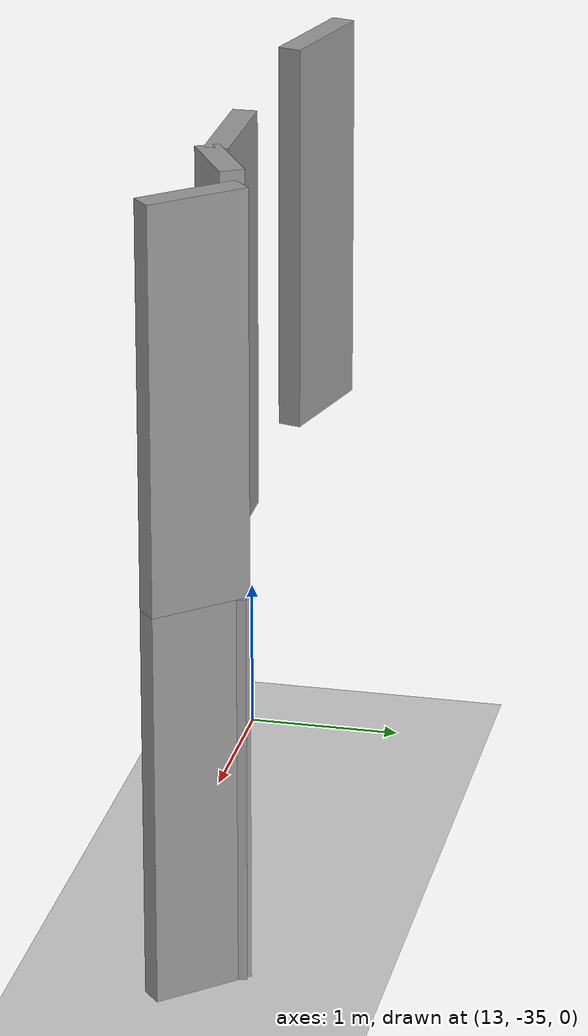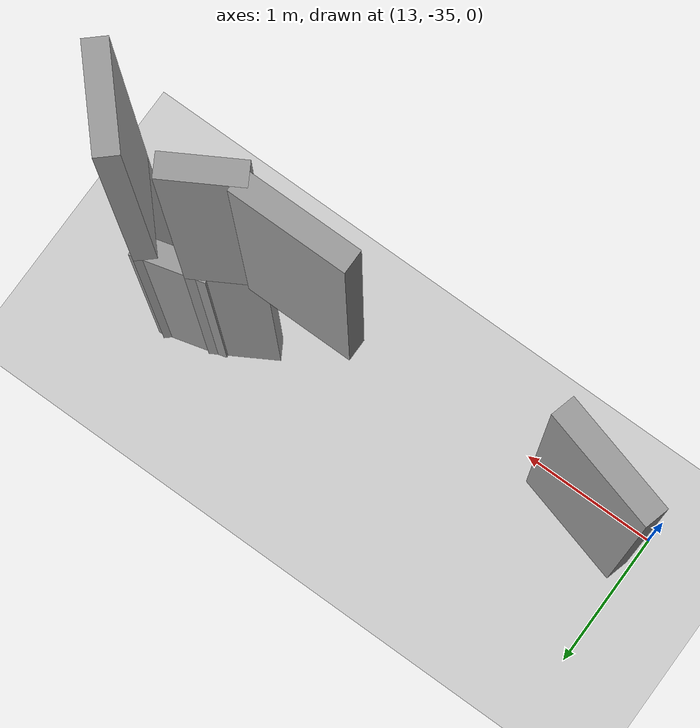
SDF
<sdf version="1.7">
 <world name="default">
  <model name="ground_plane">
   <static>1</static>
   <link name="link">
    <collision name="collision">
     <geometry><plane><normal>0 0 1</normal><size>100 100</size></plane></geometry>
     <surface>
      <contact><collide_bitmask>65535</collide_bitmask></contact>
      <friction><ode><mu>100</mu><mu2>50</mu2></ode></friction>
     </surface>
    </collision>
    <visual name="visual">
     <cast_shadows>0</cast_shadows>
     <geometry><plane><normal>0 0 1</normal><size>100 100</size></plane></geometry>
     <material>
      <script><uri>file://media/materials/scripts/gazebo.material</uri><name>Gazebo/Grey</name></script>
     </material>
    </visual>
   </link>
  </model>
  <model name="EnvDC01">
   <link name="Wall_203">
    <pose>9.47049 -28.24 0 0 -0 0.523599</pose>
    <visual name="Wall_203_Visual">
     <pose>0 0 1.25 0 -0 0</pose>
     <geometry><box><size>0.5 0.15 2.5</size></box></geometry>
     <material>
      <script><uri>file://media/materials/scripts/gazebo.material</uri><name>Gazebo/Grey</name></script>
      <ambient>1 1 1 1</ambient>
      <shader type="pixel"/>
     </material>
     <meta><layer>0</layer></meta>
    </visual>
    <collision name="Wall_203_Collision">
     <pose>0 0 1.25 0 -0 0</pose>
     <geometry><box><size>0.5 0.15 2.5</size></box></geometry>
     <surface>
      <friction>
       <ode><mu>1</mu><mu2>1</mu2><fdir1>0 0 0</fdir1><slip1>0</slip1><slip2>0</slip2></ode>
       <torsional>
        <coefficient>1</coefficient>
        <patch_radius>0</patch_radius>
        <surface_radius>0</surface_radius>
        <use_patch_radius>1</use_patch_radius>
        <ode><slip>0</slip></ode>
       </torsional>
      </friction>
      <bounce><restitution_coefficient>0</restitution_coefficient><threshold>1e+06</threshold></bounce>
      <contact>
       <collide_without_contact>0</collide_without_contact>
       <collide_without_contact_bitmask>1</collide_without_contact_bitmask>
       <collide_bitmask>1</collide_bitmask>
       <ode>
        <soft_cfm>0</soft_cfm>
        <soft_erp>0.2</soft_erp>
        <kp>1e+13</kp>
        <kd>1</kd>
        <max_vel>0.01</max_vel>
        <min_depth>0</min_depth>
       </ode>
       <bullet>
        <split_impulse>1</split_impulse>
        <split_impulse_penetration_threshold>-0.01</split_impulse_penetration_threshold>
        <soft_cfm>0</soft_cfm>
        <soft_erp>0.2</soft_erp>
        <kp>1e+13</kp>
        <kd>1</kd>
       </bullet>
      </contact>
     </surface>
    </collision>
   </link>
   <link name="Wall_204">
    <pose>9.79108 -28.1072 0 0 -0 0.261799</pose>
    <visual name="Wall_204_Visual">
     <pose>0 0 1.25 0 -0 0</pose>
     <geometry><box><size>0.5 0.15 2.5</size></box></geometry>
     <material>
      <script><uri>file://media/materials/scripts/gazebo.material</uri><name>Gazebo/Grey</name></script>
      <ambient>1 1 1 1</ambient>
      <shader type="pixel"/>
     </material>
     <meta><layer>0</layer></meta>
    </visual>
    <collision name="Wall_204_Collision">
     <pose>0 0 1.25 0 -0 0</pose>
     <geometry><box><size>0.5 0.15 2.5</size></box></geometry>
     <surface>
      <friction>
       <ode><mu>1</mu><mu2>1</mu2><fdir1>0 0 0</fdir1><slip1>0</slip1><slip2>0</slip2></ode>
       <torsional>
        <coefficient>1</coefficient>
        <patch_radius>0</patch_radius>
        <surface_radius>0</surface_radius>
        <use_patch_radius>1</use_patch_radius>
        <ode><slip>0</slip></ode>
       </torsional>
      </friction>
      <bounce><restitution_coefficient>0</restitution_coefficient><threshold>1e+06</threshold></bounce>
      <contact>
       <collide_without_contact>0</collide_without_contact>
       <collide_without_contact_bitmask>1</collide_without_contact_bitmask>
       <collide_bitmask>1</collide_bitmask>
       <ode>
        <soft_cfm>0</soft_cfm>
        <soft_erp>0.2</soft_erp>
        <kp>1e+13</kp>
        <kd>1</kd>
        <max_vel>0.01</max_vel>
        <min_depth>0</min_depth>
       </ode>
       <bullet>
        <split_impulse>1</split_impulse>
        <split_impulse_penetration_threshold>-0.01</split_impulse_penetration_threshold>
        <soft_cfm>0</soft_cfm>
        <soft_erp>0.2</soft_erp>
        <kp>1e+13</kp>
        <kd>1</kd>
       </bullet>
      </contact>
     </surface>
    </collision>
   </link>
   <link name="Wall_205">
    <pose>10.1264 -28.2458 0 0 0 -0.835722</pose>
    <visual name="Wall_205_Visual">
     <pose>0 0 1.25 0 -0 0</pose>
     <geometry><box><size>0.645839 0.15 2.5</size></box></geometry>
     <material>
      <script><uri>file://media/materials/scripts/gazebo.material</uri><name>Gazebo/Grey</name></script>
      <ambient>1 1 1 1</ambient>
      <shader type="pixel"/>
     </material>
     <meta><layer>0</layer></meta>
    </visual>
    <collision name="Wall_205_Collision">
     <pose>0 0 1.25 0 -0 0</pose>
     <geometry><box><size>0.645839 0.15 2.5</size></box></geometry>
     <surface>
      <friction>
       <ode><mu>1</mu><mu2>1</mu2><fdir1>0 0 0</fdir1><slip1>0</slip1><slip2>0</slip2></ode>
       <torsional>
        <coefficient>1</coefficient>
        <patch_radius>0</patch_radius>
        <surface_radius>0</surface_radius>
        <use_patch_radius>1</use_patch_radius>
        <ode><slip>0</slip></ode>
       </torsional>
      </friction>
      <bounce><restitution_coefficient>0</restitution_coefficient><threshold>1e+06</threshold></bounce>
      <contact>
       <collide_without_contact>0</collide_without_contact>
       <collide_without_contact_bitmask>1</collide_without_contact_bitmask>
       <collide_bitmask>1</collide_bitmask>
       <ode>
        <soft_cfm>0</soft_cfm>
        <soft_erp>0.2</soft_erp>
        <kp>1e+13</kp>
        <kd>1</kd>
        <max_vel>0.01</max_vel>
        <min_depth>0</min_depth>
       </ode>
       <bullet>
        <split_impulse>1</split_impulse>
        <split_impulse_penetration_threshold>-0.01</split_impulse_penetration_threshold>
        <soft_cfm>0</soft_cfm>
        <soft_erp>0.2</soft_erp>
        <kp>1e+13</kp>
        <kd>1</kd>
       </bullet>
      </contact>
     </surface>
    </collision>
   </link>
   <link name="Wall_372">
    <pose>6.88256 -28.224 2.5 0 0 -0.261799</pose>
    <visual name="Wall_372_Visual">
     <pose>0 0 1.25 0 -0 0</pose>
     <geometry><box><size>0.75 0.15 2.5</size></box></geometry>
     <material>
      <script><uri>file://media/materials/scripts/gazebo.material</uri><name>Gazebo/Grey</name></script>
      <ambient>1 1 1 1</ambient>
      <shader type="pixel"/>
     </material>
     <meta><layer>1</layer></meta>
    </visual>
    <collision name="Wall_372_Collision">
     <pose>0 0 1.25 0 -0 0</pose>
     <geometry><box><size>0.75 0.15 2.5</size></box></geometry>
     <surface>
      <friction>
       <ode><mu>1</mu><mu2>1</mu2><fdir1>0 0 0</fdir1><slip1>0</slip1><slip2>0</slip2></ode>
       <torsional>
        <coefficient>1</coefficient>
        <patch_radius>0</patch_radius>
        <surface_radius>0</surface_radius>
        <use_patch_radius>1</use_patch_radius>
        <ode><slip>0</slip></ode>
       </torsional>
      </friction>
      <bounce><restitution_coefficient>0</restitution_coefficient><threshold>1e+06</threshold></bounce>
      <contact>
       <collide_without_contact>0</collide_without_contact>
       <collide_without_contact_bitmask>1</collide_without_contact_bitmask>
       <collide_bitmask>1</collide_bitmask>
       <ode>
        <soft_cfm>0</soft_cfm>
        <soft_erp>0.2</soft_erp>
        <kp>1e+13</kp>
        <kd>1</kd>
        <max_vel>0.01</max_vel>
        <min_depth>0</min_depth>
       </ode>
       <bullet>
        <split_impulse>1</split_impulse>
        <split_impulse_penetration_threshold>-0.01</split_impulse_penetration_threshold>
        <soft_cfm>0</soft_cfm>
        <soft_erp>0.2</soft_erp>
        <kp>1e+13</kp>
        <kd>1</kd>
       </bullet>
      </contact>
     </surface>
    </collision>
   </link>
   <link name="Wall_375">
    <pose>8.92234 -28.3016 2.5 0 -0 0</pose>
    <visual name="Wall_375_Visual">
     <pose>0 0 1.25 0 -0 0</pose>
     <geometry><box><size>0.75 0.15 2.5</size></box></geometry>
     <material>
      <script><uri>file://media/materials/scripts/gazebo.material</uri><name>Gazebo/Grey</name></script>
      <ambient>1 1 1 1</ambient>
      <shader type="pixel"/>
     </material>
     <meta><layer>1</layer></meta>
    </visual>
    <collision name="Wall_375_Collision">
     <pose>0 0 1.25 0 -0 0</pose>
     <geometry><box><size>0.75 0.15 2.5</size></box></geometry>
     <surface>
      <friction>
       <ode><mu>1</mu><mu2>1</mu2><fdir1>0 0 0</fdir1><slip1>0</slip1><slip2>0</slip2></ode>
       <torsional>
        <coefficient>1</coefficient>
        <patch_radius>0</patch_radius>
        <surface_radius>0</surface_radius>
        <use_patch_radius>1</use_patch_radius>
        <ode><slip>0</slip></ode>
       </torsional>
      </friction>
      <bounce><restitution_coefficient>0</restitution_coefficient><threshold>1e+06</threshold></bounce>
      <contact>
       <collide_without_contact>0</collide_without_contact>
       <collide_without_contact_bitmask>1</collide_without_contact_bitmask>
       <collide_bitmask>1</collide_bitmask>
       <ode>
        <soft_cfm>0</soft_cfm>
        <soft_erp>0.2</soft_erp>
        <kp>1e+13</kp>
        <kd>1</kd>
        <max_vel>0.01</max_vel>
        <min_depth>0</min_depth>
       </ode>
       <bullet>
        <split_impulse>1</split_impulse>
        <split_impulse_penetration_threshold>-0.01</split_impulse_penetration_threshold>
        <soft_cfm>0</soft_cfm>
        <soft_erp>0.2</soft_erp>
        <kp>1e+13</kp>
        <kd>1</kd>
       </bullet>
      </contact>
     </surface>
    </collision>
   </link>
   <link name="Wall_377">
    <pose>9.47049 -28.24 2.5 0 -0 0.523599</pose>
    <visual name="Wall_377_Visual">
     <pose>0 0 1.25 0 -0 0</pose>
     <geometry><box><size>0.5 0.15 2.5</size></box></geometry>
     <material>
      <script><uri>file://media/materials/scripts/gazebo.material</uri><name>Gazebo/Grey</name></script>
      <ambient>1 1 1 1</ambient>
      <shader type="pixel"/>
     </material>
     <meta><layer>1</layer></meta>
    </visual>
    <collision name="Wall_377_Collision">
     <pose>0 0 1.25 0 -0 0</pose>
     <geometry><box><size>0.5 0.15 2.5</size></box></geometry>
     <surface>
      <friction>
       <ode><mu>1</mu><mu2>1</mu2><fdir1>0 0 0</fdir1><slip1>0</slip1><slip2>0</slip2></ode>
       <torsional>
        <coefficient>1</coefficient>
        <patch_radius>0</patch_radius>
        <surface_radius>0</surface_radius>
        <use_patch_radius>1</use_patch_radius>
        <ode><slip>0</slip></ode>
       </torsional>
      </friction>
      <bounce><restitution_coefficient>0</restitution_coefficient><threshold>1e+06</threshold></bounce>
      <contact>
       <collide_without_contact>0</collide_without_contact>
       <collide_without_contact_bitmask>1</collide_without_contact_bitmask>
       <collide_bitmask>1</collide_bitmask>
       <ode>
        <soft_cfm>0</soft_cfm>
        <soft_erp>0.2</soft_erp>
        <kp>1e+13</kp>
        <kd>1</kd>
        <max_vel>0.01</max_vel>
        <min_depth>0</min_depth>
       </ode>
       <bullet>
        <split_impulse>1</split_impulse>
        <split_impulse_penetration_threshold>-0.01</split_impulse_penetration_threshold>
        <soft_cfm>0</soft_cfm>
        <soft_erp>0.2</soft_erp>
        <kp>1e+13</kp>
        <kd>1</kd>
       </bullet>
      </contact>
     </surface>
    </collision>
   </link>
   <link name="Wall_379">
    <pose>10.1264 -28.2458 2.5 0 0 -0.835722</pose>
    <visual name="Wall_379_Visual">
     <pose>0 0 1.25 0 -0 0</pose>
     <geometry><box><size>0.645839 0.15 2.5</size></box></geometry>
     <material>
      <script><uri>file://media/materials/scripts/gazebo.material</uri><name>Gazebo/Grey</name></script>
      <ambient>1 1 1 1</ambient>
      <shader type="pixel"/>
     </material>
     <meta><layer>1</layer></meta>
    </visual>
    <collision name="Wall_379_Collision">
     <pose>0 0 1.25 0 -0 0</pose>
     <geometry><box><size>0.645839 0.15 2.5</size></box></geometry>
     <surface>
      <friction>
       <ode><mu>1</mu><mu2>1</mu2><fdir1>0 0 0</fdir1><slip1>0</slip1><slip2>0</slip2></ode>
       <torsional>
        <coefficient>1</coefficient>
        <patch_radius>0</patch_radius>
        <surface_radius>0</surface_radius>
        <use_patch_radius>1</use_patch_radius>
        <ode><slip>0</slip></ode>
       </torsional>
      </friction>
      <bounce><restitution_coefficient>0</restitution_coefficient><threshold>1e+06</threshold></bounce>
      <contact>
       <collide_without_contact>0</collide_without_contact>
       <collide_without_contact_bitmask>1</collide_without_contact_bitmask>
       <collide_bitmask>1</collide_bitmask>
       <ode>
        <soft_cfm>0</soft_cfm>
        <soft_erp>0.2</soft_erp>
        <kp>1e+13</kp>
        <kd>1</kd>
        <max_vel>0.01</max_vel>
        <min_depth>0</min_depth>
       </ode>
       <bullet>
        <split_impulse>1</split_impulse>
        <split_impulse_penetration_threshold>-0.01</split_impulse_penetration_threshold>
        <soft_cfm>0</soft_cfm>
        <soft_erp>0.2</soft_erp>
        <kp>1e+13</kp>
        <kd>1</kd>
       </bullet>
      </contact>
     </surface>
    </collision>
   </link>
   <static>1</static>
   <pose>6.55365 -6.2466 0 0 -0 0</pose>
  </model>
 </world>
</sdf>
